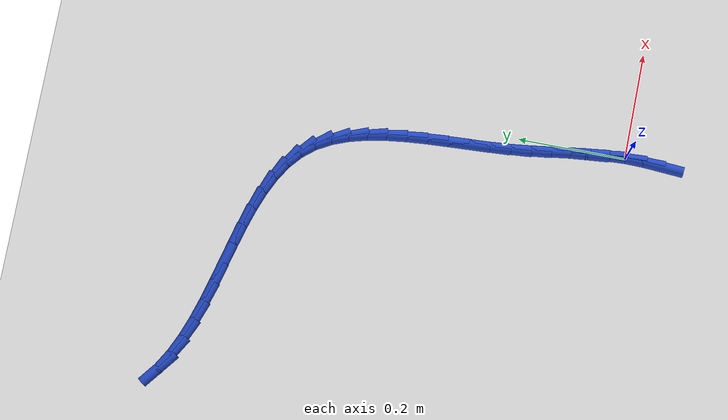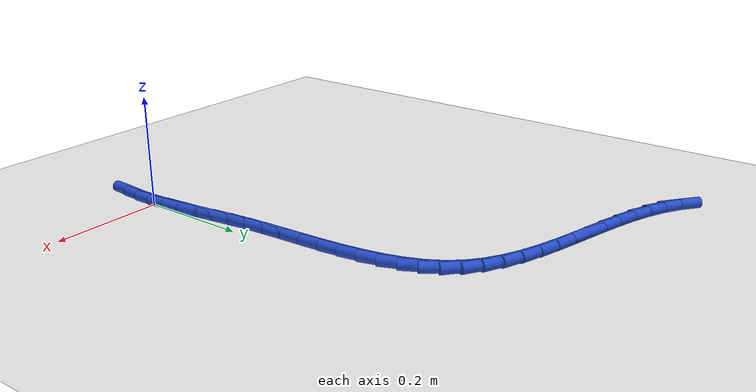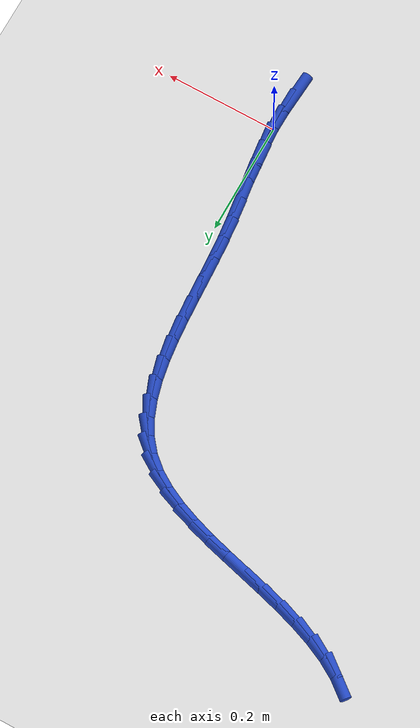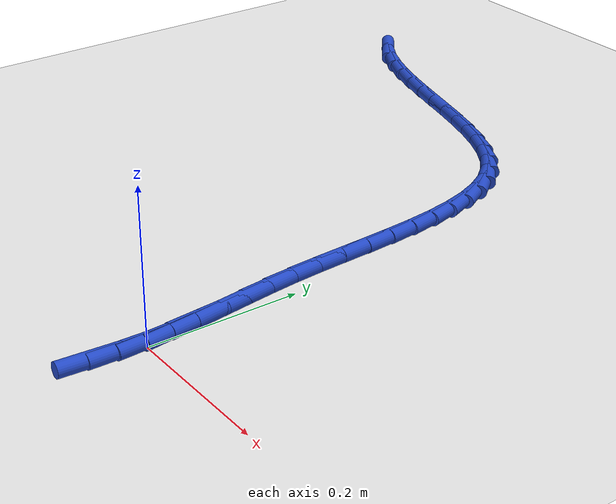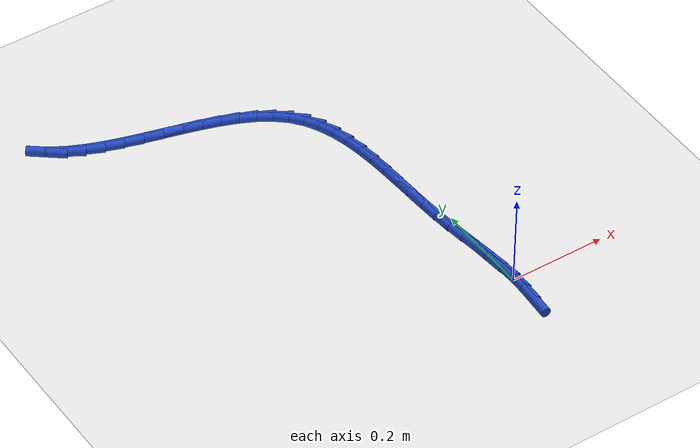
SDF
<sdf version="1.6">
 <world name="default">
  <model name="ground_plane">
   <static>1</static>
   <link name="link">
    <collision name="collision">
     <geometry><plane><normal>0 0 1</normal><size>100 100</size></plane></geometry>
     <surface><friction><ode><mu>100</mu><mu2>50</mu2></ode></friction></surface>
    </collision>
    <visual name="visual">
     <cast_shadows>0</cast_shadows>
     <geometry><plane><normal>0 0 1</normal><size>100 100</size></plane></geometry>
     <material>
      <script><uri>file://media/materials/scripts/gazebo.material</uri><name>Gazebo/WhiteGlow</name></script>
     </material>
    </visual>
   </link>
  </model>
  <model name="line">
   <link name="link_0">
    <pose>5.204170427930421e-18 -6.938893903907228e-18 0.01 0 1.57 -1.525466865346189</pose>
    <collision name="collision">
     <geometry><cylinder><radius>0.01</radius><length>0.08</length></cylinder></geometry>
    </collision>
    <visual name="visual">
     <material>
      <script><name>Gazebo/Blue</name><uri>file://media/materials/scripts/gazebo.material</uri></script>
     </material>
     <geometry><cylinder><radius>0.01</radius><length>0.08</length></cylinder></geometry>
    </visual>
   </link>
   <link name="link_1">
    <pose>-0.0015726890717576289 0.03467086763680368 0.01 0 1.57 -1.476173963421705</pose>
    <collision name="collision">
     <geometry><cylinder><radius>0.01</radius><length>0.08</length></cylinder></geometry>
    </collision>
    <visual name="visual">
     <material>
      <script><name>Gazebo/Blue</name><uri>file://media/materials/scripts/gazebo.material</uri></script>
     </material>
     <geometry><cylinder><radius>0.01</radius><length>0.08</length></cylinder></geometry>
    </visual>
   </link>
   <link name="link_2">
    <pose>-0.0048644142566176 0.06935500745359917 0.01 0 1.57 -1.4452423699175796</pose>
    <collision name="collision">
     <geometry><cylinder><radius>0.01</radius><length>0.08</length></cylinder></geometry>
    </collision>
    <visual name="visual">
     <material>
      <script><name>Gazebo/Blue</name><uri>file://media/materials/scripts/gazebo.material</uri></script>
     </material>
     <geometry><cylinder><radius>0.01</radius><length>0.08</length></cylinder></geometry>
    </visual>
   </link>
   <link name="link_3">
    <pose>-0.009272969059401427 0.10428313990101569 0.01 0 1.57 -1.4326208207517068</pose>
    <collision name="collision">
     <geometry><cylinder><radius>0.01</radius><length>0.08</length></cylinder></geometry>
    </collision>
    <visual name="visual">
     <material>
      <script><name>Gazebo/Blue</name><uri>file://media/materials/scripts/gazebo.material</uri></script>
     </material>
     <geometry><cylinder><radius>0.01</radius><length>0.08</length></cylinder></geometry>
    </visual>
   </link>
   <link name="link_4">
    <pose>-0.014196146984930666 0.13968598542968272 0.01 0 1.57 -1.437669131877646</pose>
    <collision name="collision">
     <geometry><cylinder><radius>0.01</radius><length>0.08</length></cylinder></geometry>
    </collision>
    <visual name="visual">
     <material>
      <script><name>Gazebo/Blue</name><uri>file://media/materials/scripts/gazebo.material</uri></script>
     </material>
     <geometry><cylinder><radius>0.01</radius><length>0.08</length></cylinder></geometry>
    </visual>
   </link>
   <link name="link_5">
    <pose>-0.019031741538026826 0.17579426449022945 0.01 0 1.57 -1.4593457047023486</pose>
    <collision name="collision">
     <geometry><cylinder><radius>0.01</radius><length>0.08</length></cylinder></geometry>
    </collision>
    <visual name="visual">
     <material>
      <script><name>Gazebo/Blue</name><uri>file://media/materials/scripts/gazebo.material</uri></script>
     </material>
     <geometry><cylinder><radius>0.01</radius><length>0.08</length></cylinder></geometry>
    </visual>
   </link>
   <link name="link_6">
    <pose>-0.023177546223511463 0.21283869753328535 0.01 0 1.57 -1.4918491704939212</pose>
    <collision name="collision">
     <geometry><cylinder><radius>0.01</radius><length>0.08</length></cylinder></geometry>
    </collision>
    <visual name="visual">
     <material>
      <script><name>Gazebo/Blue</name><uri>file://media/materials/scripts/gazebo.material</uri></script>
     </material>
     <geometry><cylinder><radius>0.01</radius><length>0.08</length></cylinder></geometry>
    </visual>
   </link>
   <link name="link_7">
    <pose>-0.026192747832759933 0.25095197368180616 0.01 0 1.57 -1.5139920718391748</pose>
    <collision name="collision">
     <geometry><cylinder><radius>0.01</radius><length>0.08</length></cylinder></geometry>
    </collision>
    <visual name="visual">
     <material>
      <script><name>Gazebo/Blue</name><uri>file://media/materials/scripts/gazebo.material</uri></script>
     </material>
     <geometry><cylinder><radius>0.01</radius><length>0.08</length></cylinder></geometry>
    </visual>
   </link>
   <link name="link_8">
    <pose>-0.02840196308097421 0.2898018549649636 0.01 0 1.57 -1.520871027531052</pose>
    <collision name="collision">
     <geometry><cylinder><radius>0.01</radius><length>0.08</length></cylinder></geometry>
    </collision>
    <visual name="visual">
     <material>
      <script><name>Gazebo/Blue</name><uri>file://media/materials/scripts/gazebo.material</uri></script>
     </material>
     <geometry><cylinder><radius>0.01</radius><length>0.08</length></cylinder></geometry>
    </visual>
   </link>
   <link name="link_9">
    <pose>-0.030356493168150502 0.3289184137875223 0.01 0 1.57 -1.5130095171058313</pose>
    <collision name="collision">
     <geometry><cylinder><radius>0.01</radius><length>0.08</length></cylinder></geometry>
    </collision>
    <visual name="visual">
     <material>
      <script><name>Gazebo/Blue</name><uri>file://media/materials/scripts/gazebo.material</uri></script>
     </material>
     <geometry><cylinder><radius>0.01</radius><length>0.08</length></cylinder></geometry>
    </visual>
   </link>
   <link name="link_10">
    <pose>-0.03260767426788891 0.36783170131105386 0.01 0 1.57 -1.4899280205731082</pose>
    <collision name="collision">
     <geometry><cylinder><radius>0.01</radius><length>0.08</length></cylinder></geometry>
    </collision>
    <visual name="visual">
     <material>
      <script><name>Gazebo/Blue</name><uri>file://media/materials/scripts/gazebo.material</uri></script>
     </material>
     <geometry><cylinder><radius>0.01</radius><length>0.08</length></cylinder></geometry>
    </visual>
   </link>
   <link name="link_11">
    <pose>-0.0357068425537895 0.4060717686971295 0.01 0 1.57 -1.4501222387260886</pose>
    <collision name="collision">
     <geometry><cylinder><radius>0.01</radius><length>0.08</length></cylinder></geometry>
    </collision>
    <visual name="visual">
     <material>
      <script><name>Gazebo/Blue</name><uri>file://media/materials/scripts/gazebo.material</uri></script>
     </material>
     <geometry><cylinder><radius>0.01</radius><length>0.08</length></cylinder></geometry>
    </visual>
   </link>
   <link name="link_12">
    <pose>-0.0402053341994524 0.44316866710732067 0.01 0 1.57 -1.3910095355730463</pose>
    <collision name="collision">
     <geometry><cylinder><radius>0.01</radius><length>0.08</length></cylinder></geometry>
    </collision>
    <visual name="visual">
     <material>
      <script><name>Gazebo/Blue</name><uri>file://media/materials/scripts/gazebo.material</uri></script>
     </material>
     <geometry><cylinder><radius>0.01</radius><length>0.08</length></cylinder></geometry>
    </visual>
   </link>
   <link name="link_13">
    <pose>-0.046654485378477654 0.4786524477031986 0.01 0 1.57 -1.3089563637968882</pose>
    <collision name="collision">
     <geometry><cylinder><radius>0.01</radius><length>0.08</length></cylinder></geometry>
    </collision>
    <visual name="visual">
     <material>
      <script><name>Gazebo/Blue</name><uri>file://media/materials/scripts/gazebo.material</uri></script>
     </material>
     <geometry><cylinder><radius>0.01</radius><length>0.08</length></cylinder></geometry>
    </visual>
   </link>
   <link name="link_14">
    <pose>-0.055605632264465396 0.5120531616463349 0.01 0 1.57 -1.1996755198462907</pose>
    <collision name="collision">
     <geometry><cylinder><radius>0.01</radius><length>0.08</length></cylinder></geometry>
    </collision>
    <visual name="visual">
     <material>
      <script><name>Gazebo/Blue</name><uri>file://media/materials/scripts/gazebo.material</uri></script>
     </material>
     <geometry><cylinder><radius>0.01</radius><length>0.08</length></cylinder></geometry>
    </visual>
   </link>
   <link name="link_15">
    <pose>-0.06761011103101566 0.5429008600983004 0.01 0 1.57 -1.0595615241486003</pose>
    <collision name="collision">
     <geometry><cylinder><radius>0.01</radius><length>0.08</length></cylinder></geometry>
    </collision>
    <visual name="visual">
     <material>
      <script><name>Gazebo/Blue</name><uri>file://media/materials/scripts/gazebo.material</uri></script>
     </material>
     <geometry><cylinder><radius>0.01</radius><length>0.08</length></cylinder></geometry>
    </visual>
   </link>
   <link name="link_16">
    <pose>-0.08321925785172851 0.5707255942206667 0.01 0 1.57 -0.8887410565504138</pose>
    <collision name="collision">
     <geometry><cylinder><radius>0.01</radius><length>0.08</length></cylinder></geometry>
    </collision>
    <visual name="visual">
     <material>
      <script><name>Gazebo/Blue</name><uri>file://media/materials/scripts/gazebo.material</uri></script>
     </material>
     <geometry><cylinder><radius>0.01</radius><length>0.08</length></cylinder></geometry>
    </visual>
   </link>
   <link name="link_17">
    <pose>-0.10298084332388467 0.5950605346263621 0.01 0 1.57 -0.7100038560354098</pose>
    <collision name="collision">
     <geometry><cylinder><radius>0.01</radius><length>0.08</length></cylinder></geometry>
    </collision>
    <visual name="visual">
     <material>
      <script><name>Gazebo/Blue</name><uri>file://media/materials/scripts/gazebo.material</uri></script>
     </material>
     <geometry><cylinder><radius>0.01</radius><length>0.08</length></cylinder></geometry>
    </visual>
   </link>
   <link name="link_18">
    <pose>-0.1270693361858647 0.6157654462529885 0.01 0 1.57 -0.5614147246949308</pose>
    <collision name="collision">
     <geometry><cylinder><radius>0.01</radius><length>0.08</length></cylinder></geometry>
    </collision>
    <visual name="visual">
     <material>
      <script><name>Gazebo/Blue</name><uri>file://media/materials/scripts/gazebo.material</uri></script>
     </material>
     <geometry><cylinder><radius>0.01</radius><length>0.08</length></cylinder></geometry>
    </visual>
   </link>
   <link name="link_19">
    <pose>-0.1549635335831919 0.6333087231907982 0.01 0 1.57 -0.4471855887108201</pose>
    <collision name="collision">
     <geometry><cylinder><radius>0.01</radius><length>0.08</length></cylinder></geometry>
    </collision>
    <visual name="visual">
     <material>
      <script><name>Gazebo/Blue</name><uri>file://media/materials/scripts/gazebo.material</uri></script>
     </material>
     <geometry><cylinder><radius>0.01</radius><length>0.08</length></cylinder></geometry>
    </visual>
   </link>
   <link name="link_20">
    <pose>-0.18606625197703033 0.648225233510027 0.01 0 1.57 -0.3634909186812425</pose>
    <collision name="collision">
     <geometry><cylinder><radius>0.01</radius><length>0.08</length></cylinder></geometry>
    </collision>
    <visual name="visual">
     <material>
      <script><name>Gazebo/Blue</name><uri>file://media/materials/scripts/gazebo.material</uri></script>
     </material>
     <geometry><cylinder><radius>0.01</radius><length>0.08</length></cylinder></geometry>
    </visual>
   </link>
   <link name="link_21">
    <pose>-0.21978030782854388 0.6610498452809117 0.01 0 1.57 -0.30549677306807743</pose>
    <collision name="collision">
     <geometry><cylinder><radius>0.01</radius><length>0.08</length></cylinder></geometry>
    </collision>
    <visual name="visual">
     <material>
      <script><name>Gazebo/Blue</name><uri>file://media/materials/scripts/gazebo.material</uri></script>
     </material>
     <geometry><cylinder><radius>0.01</radius><length>0.08</length></cylinder></geometry>
    </visual>
   </link>
   <link name="link_22">
    <pose>-0.25550851759889637 0.6723174265736881 0.01 0 1.57 -0.2691292814759106</pose>
    <collision name="collision">
     <geometry><cylinder><radius>0.01</radius><length>0.08</length></cylinder></geometry>
    </collision>
    <visual name="visual">
     <material>
      <script><name>Gazebo/Blue</name><uri>file://media/materials/scripts/gazebo.material</uri></script>
     </material>
     <geometry><cylinder><radius>0.01</radius><length>0.08</length></cylinder></geometry>
    </visual>
   </link>
   <link name="link_23">
    <pose>-0.29265369774925176 0.6825628454585926 0.01 0 1.57 -0.2515838415232816</pose>
    <collision name="collision">
     <geometry><cylinder><radius>0.01</radius><length>0.08</length></cylinder></geometry>
    </collision>
    <visual name="visual">
     <material>
      <script><name>Gazebo/Blue</name><uri>file://media/materials/scripts/gazebo.material</uri></script>
     </material>
     <geometry><cylinder><radius>0.01</radius><length>0.08</length></cylinder></geometry>
    </visual>
   </link>
   <link name="link_24">
    <pose>-0.33061866474077434 0.6923209700058615 0.01 0 1.57 -0.25134698519280896</pose>
    <collision name="collision">
     <geometry><cylinder><radius>0.01</radius><length>0.08</length></cylinder></geometry>
    </collision>
    <visual name="visual">
     <material>
      <script><name>Gazebo/Blue</name><uri>file://media/materials/scripts/gazebo.material</uri></script>
     </material>
     <geometry><cylinder><radius>0.01</radius><length>0.08</length></cylinder></geometry>
    </visual>
   </link>
   <link name="link_25">
    <pose>-0.36880623503462784 0.7021266682857306 0.01 0 1.57 -0.2681097011331625</pose>
    <collision name="collision">
     <geometry><cylinder><radius>0.01</radius><length>0.08</length></cylinder></geometry>
    </collision>
    <visual name="visual">
     <material>
      <script><name>Gazebo/Blue</name><uri>file://media/materials/scripts/gazebo.material</uri></script>
     </material>
     <geometry><cylinder><radius>0.01</radius><length>0.08</length></cylinder></geometry>
    </visual>
   </link>
   <link name="link_26">
    <pose>-0.40661922509197596 0.7125148083684368 0.01 0 1.57 -0.3027010437539615</pose>
    <collision name="collision">
     <geometry><cylinder><radius>0.01</radius><length>0.08</length></cylinder></geometry>
    </collision>
    <visual name="visual">
     <material>
      <script><name>Gazebo/Blue</name><uri>file://media/materials/scripts/gazebo.material</uri></script>
     </material>
     <geometry><cylinder><radius>0.01</radius><length>0.08</length></cylinder></geometry>
    </visual>
   </link>
   <link name="link_27">
    <pose>-0.4434604513739828 0.7240202583242159 0.01 0 1.57 -0.3570426701770385</pose>
    <collision name="collision">
     <geometry><cylinder><radius>0.01</radius><length>0.08</length></cylinder></geometry>
    </collision>
    <visual name="visual">
     <material>
      <script><name>Gazebo/Blue</name><uri>file://media/materials/scripts/gazebo.material</uri></script>
     </material>
     <geometry><cylinder><radius>0.01</radius><length>0.08</length></cylinder></geometry>
    </visual>
   </link>
   <link name="link_28">
    <pose>-0.47873273034181263 0.7371778862233043 0.01 0 1.57 -0.4340230013759574</pose>
    <collision name="collision">
     <geometry><cylinder><radius>0.01</radius><length>0.08</length></cylinder></geometry>
    </collision>
    <visual name="visual">
     <material>
      <script><name>Gazebo/Blue</name><uri>file://media/materials/scripts/gazebo.material</uri></script>
     </material>
     <geometry><cylinder><radius>0.01</radius><length>0.08</length></cylinder></geometry>
    </visual>
   </link>
   <link name="link_29">
    <pose>-0.5118388784566292 0.7525225601359382 0.01 0 1.57 -0.537041591197063</pose>
    <collision name="collision">
     <geometry><cylinder><radius>0.01</radius><length>0.08</length></cylinder></geometry>
    </collision>
    <visual name="visual">
     <material>
      <script><name>Gazebo/Blue</name><uri>file://media/materials/scripts/gazebo.material</uri></script>
     </material>
     <geometry><cylinder><radius>0.01</radius><length>0.08</length></cylinder></geometry>
    </visual>
   </link>
   <link name="link_30">
    <pose>-0.5421817121795963 0.7705891481323538 0.01 0 1.57 -0.6687806964344242</pose>
    <collision name="collision">
     <geometry><cylinder><radius>0.01</radius><length>0.08</length></cylinder></geometry>
    </collision>
    <visual name="visual">
     <material>
      <script><name>Gazebo/Blue</name><uri>file://media/materials/scripts/gazebo.material</uri></script>
     </material>
     <geometry><cylinder><radius>0.01</radius><length>0.08</length></cylinder></geometry>
    </visual>
   </link>
   <link name="link_288">
    <pose>-0.0030381799669657048 -0.06993758186908301 0.01 0 1.57 1.5007270543963542</pose>
    <collision name="collision">
     <geometry><cylinder><radius>0.01</radius><length>0.08</length></cylinder></geometry>
    </collision>
    <visual name="visual">
     <material>
      <script><name>Gazebo/Blue</name><uri>file://media/materials/scripts/gazebo.material</uri></script>
     </material>
     <geometry><cylinder><radius>0.01</radius><length>0.08</length></cylinder></geometry>
    </visual>
   </link>
   <link name="link_289">
    <pose>-0.0005757565103306802 -0.03485241357405816 0.01 0 1.57 1.5542779831797298</pose>
    <collision name="collision">
     <geometry><cylinder><radius>0.01</radius><length>0.08</length></cylinder></geometry>
    </collision>
    <visual name="visual">
     <material>
      <script><name>Gazebo/Blue</name><uri>file://media/materials/scripts/gazebo.material</uri></script>
     </material>
     <geometry><cylinder><radius>0.01</radius><length>0.08</length></cylinder></geometry>
    </visual>
   </link>
   <link name="link_290">
    <pose>4.336808689942018e-18 -1.8041124150158794e-16 0.01 0 1.57 -1.5204422817076713</pose>
    <collision name="collision">
     <geometry><cylinder><radius>0.01</radius><length>0.08</length></cylinder></geometry>
    </collision>
    <visual name="visual">
     <material>
      <script><name>Gazebo/Blue</name><uri>file://media/materials/scripts/gazebo.material</uri></script>
     </material>
     <geometry><cylinder><radius>0.01</radius><length>0.08</length></cylinder></geometry>
    </visual>
   </link>
   <link name="link_291">
    <pose>-0.0017454860979500136 0.0346349653034191 0.01 0 1.57 -1.4408063385641952</pose>
    <collision name="collision">
     <geometry><cylinder><radius>0.01</radius><length>0.08</length></cylinder></geometry>
    </collision>
    <visual name="visual">
     <material>
      <script><name>Gazebo/Blue</name><uri>file://media/materials/scripts/gazebo.material</uri></script>
     </material>
     <geometry><cylinder><radius>0.01</radius><length>0.08</length></cylinder></geometry>
    </visual>
   </link>
   <link name="link_292">
    <pose>-0.0062467904661575036 0.06906778878653234 0.01 0 1.57 -1.4805974018737402</pose>
    <collision name="collision">
     <geometry><cylinder><radius>0.01</radius><length>0.08</length></cylinder></geometry>
    </collision>
    <visual name="visual">
     <material>
      <script><name>Gazebo/Blue</name><uri>file://media/materials/scripts/gazebo.material</uri></script>
     </material>
     <geometry><cylinder><radius>0.01</radius><length>0.08</length></cylinder></geometry>
    </visual>
   </link>
  </model>
 </world>
</sdf>
